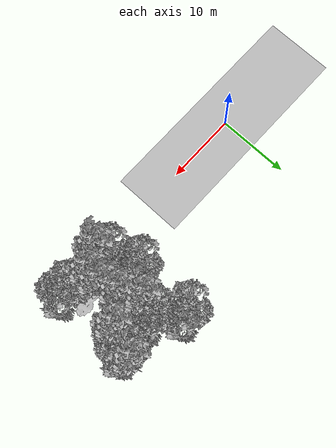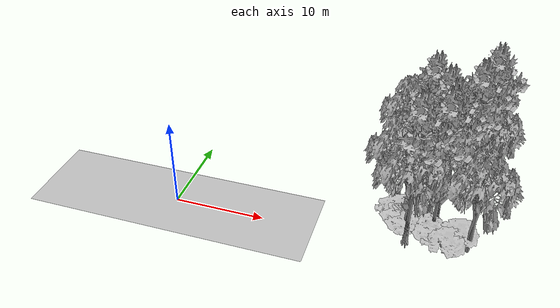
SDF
<sdf version="1.7">
 <world name="default">
  <model name="ground_plane">
   <static>1</static>
   <link name="link">
    <collision name="collision">
     <pose>-50 0 0 0 -0 0</pose>
     <geometry><plane><normal>0 0 1</normal><size>100 100</size></plane></geometry>
     <surface><contact><ode><min_depth>0.01</min_depth><max_vel>0</max_vel></ode></contact></surface>
    </collision>
    <visual name="grass">
     <cast_shadows>0</cast_shadows>
     <geometry>
      <mesh>
       <scale>0.5814285714285714 0.18142857142857144 0.1</scale>
       <uri>file://grass_plane/meshes/grass_plane.dae</uri>
      </mesh>
     </geometry>
    </visual>
   </link>
  </model>
  <model name="Tree 10">
   <static>1</static>
   <pose>23.41770234843692 13.937861952048472 0 1.57079 -0 0</pose>
   <link name="link">
    <collision name="collision">
     <geometry><mesh><scale>3.5 5 3.5</scale><uri>model://tree_2/meshes/tree_2.obj</uri></mesh></geometry>
    </collision>
    <visual name="visual">
     <geometry><mesh><scale>3.5 5 3.5</scale><uri>model://tree_2/meshes/tree_2.obj</uri></mesh></geometry>
    </visual>
   </link>
  </model>
  <model name="Tree 20">
   <static>1</static>
   <pose>23.373944926552966 5.9327887237196 0 1.57079 -0 0</pose>
   <link name="link">
    <collision name="collision">
     <geometry><mesh><scale>3.5 5 3.5</scale><uri>model://tree_2/meshes/tree_2.obj</uri></mesh></geometry>
    </collision>
    <visual name="visual">
     <geometry><mesh><scale>3.5 5 3.5</scale><uri>model://tree_2/meshes/tree_2.obj</uri></mesh></geometry>
    </visual>
   </link>
  </model>
  <model name="Tree 71">
   <static>1</static>
   <pose>30.439433179869198 10.244127430541909 0 1.57079 -0 0</pose>
   <link name="link">
    <collision name="collision">
     <geometry><mesh><scale>3.5 5 3.5</scale><uri>model://tree_2/meshes/tree_2.obj</uri></mesh></geometry>
    </collision>
    <visual name="visual">
     <geometry><mesh><scale>3.5 5 3.5</scale><uri>model://tree_2/meshes/tree_2.obj</uri></mesh></geometry>
    </visual>
   </link>
  </model>
  <model name="Tree 85">
   <static>1</static>
   <pose>24.84589100611022 2.0450765155303507 0 1.57079 -0 0</pose>
   <link name="link">
    <collision name="collision">
     <geometry><mesh><scale>3.5 5 3.5</scale><uri>model://tree_2/meshes/tree_2.obj</uri></mesh></geometry>
    </collision>
    <visual name="visual">
     <geometry><mesh><scale>3.5 5 3.5</scale><uri>model://tree_2/meshes/tree_2.obj</uri></mesh></geometry>
    </visual>
   </link>
  </model>
  <model name="Tree 175">
   <static>1</static>
   <pose>31.216532478574038 1.6920933646077962 0 1.57079 -0 0</pose>
   <link name="link">
    <collision name="collision">
     <geometry><mesh><scale>3.5 5 3.5</scale><uri>model://tree_2/meshes/tree_2.obj</uri></mesh></geometry>
    </collision>
    <visual name="visual">
     <geometry><mesh><scale>3.5 5 3.5</scale><uri>model://tree_2/meshes/tree_2.obj</uri></mesh></geometry>
    </visual>
   </link>
  </model>
  <model name="Tree 202">
   <static>1</static>
   <pose>27.799864416323373 4.47839186560271 0 1.57079 -0 0</pose>
   <link name="link">
    <collision name="collision">
     <geometry><mesh><scale>3.5 5 3.5</scale><uri>model://tree_9/meshes/tree_9.obj</uri></mesh></geometry>
    </collision>
    <visual name="visual">
     <geometry><mesh><scale>3.5 5 3.5</scale><uri>model://tree_9/meshes/tree_9.obj</uri></mesh></geometry>
    </visual>
   </link>
  </model>
  <model name="Tree 207">
   <static>1</static>
   <pose>31.313003176978825 13.101445186757516 0 1.57079 -0 0</pose>
   <link name="link">
    <collision name="collision">
     <geometry><mesh><scale>3.5 5 3.5</scale><uri>model://tree_9/meshes/tree_9.obj</uri></mesh></geometry>
    </collision>
    <visual name="visual">
     <geometry><mesh><scale>3.5 5 3.5</scale><uri>model://tree_9/meshes/tree_9.obj</uri></mesh></geometry>
    </visual>
   </link>
  </model>
  <model name="Tree 232">
   <static>1</static>
   <pose>26.428159945152885 8.563979378225575 0 1.57079 -0 0</pose>
   <link name="link">
    <collision name="collision">
     <geometry><mesh><scale>3 2 3</scale><uri>model://tree_3/meshes/tree_3.obj</uri></mesh></geometry>
    </collision>
    <visual name="visual">
     <geometry><mesh><scale>3 2 3</scale><uri>model://tree_3/meshes/tree_3.obj</uri></mesh></geometry>
    </visual>
   </link>
  </model>
  <model name="Tree 266">
   <static>1</static>
   <pose>31.379351463459713 11.527972246798324 0 1.57079 -0 0</pose>
   <link name="link">
    <collision name="collision">
     <geometry><mesh><scale>3.5 5 3.5</scale><uri>model://tree_2/meshes/tree_2.obj</uri></mesh></geometry>
    </collision>
    <visual name="visual">
     <geometry><mesh><scale>3.5 5 3.5</scale><uri>model://tree_2/meshes/tree_2.obj</uri></mesh></geometry>
    </visual>
   </link>
  </model>
  <model name="Tree 282">
   <static>1</static>
   <pose>27.50120636882457 10.28270531051064 0 1.57079 -0 0</pose>
   <link name="link">
    <collision name="collision">
     <geometry><mesh><scale>3.5 5 3.5</scale><uri>model://tree_2/meshes/tree_2.obj</uri></mesh></geometry>
    </collision>
    <visual name="visual">
     <geometry><mesh><scale>3.5 5 3.5</scale><uri>model://tree_2/meshes/tree_2.obj</uri></mesh></geometry>
    </visual>
   </link>
  </model>
  <model name="Tree 297">
   <static>1</static>
   <pose>23.567400009500446 4.210501802500691 0 1.57079 -0 0</pose>
   <link name="link">
    <collision name="collision">
     <geometry><mesh><scale>4 2.5 4</scale><uri>model://tree_1/meshes/tree_1.obj</uri></mesh></geometry>
    </collision>
    <visual name="visual">
     <geometry><mesh><scale>4 2.5 4</scale><uri>model://tree_1/meshes/tree_1.obj</uri></mesh></geometry>
    </visual>
   </link>
  </model>
  <model name="Tree 325">
   <static>1</static>
   <pose>26.594007709506684 11.131016480885954 0 1.57079 -0 0</pose>
   <link name="link">
    <collision name="collision">
     <geometry><mesh><scale>3.5 5 3.5</scale><uri>model://tree_2/meshes/tree_2.obj</uri></mesh></geometry>
    </collision>
    <visual name="visual">
     <geometry><mesh><scale>3.5 5 3.5</scale><uri>model://tree_2/meshes/tree_2.obj</uri></mesh></geometry>
    </visual>
   </link>
  </model>
  <model name="Tree 326">
   <static>1</static>
   <pose>25.512493040483434 6.024958450952617 0 1.57079 -0 0</pose>
   <link name="link">
    <collision name="collision">
     <geometry><mesh><scale>3.5 5 3.5</scale><uri>model://tree_2/meshes/tree_2.obj</uri></mesh></geometry>
    </collision>
    <visual name="visual">
     <geometry><mesh><scale>3.5 5 3.5</scale><uri>model://tree_2/meshes/tree_2.obj</uri></mesh></geometry>
    </visual>
   </link>
  </model>
  <model name="Tree 339">
   <static>1</static>
   <pose>24.268799278448782 3.2190858737933823 0 1.57079 -0 0</pose>
   <link name="link">
    <collision name="collision">
     <geometry><mesh><scale>4 2.5 4</scale><uri>model://tree_1/meshes/tree_1.obj</uri></mesh></geometry>
    </collision>
    <visual name="visual">
     <geometry><mesh><scale>4 2.5 4</scale><uri>model://tree_1/meshes/tree_1.obj</uri></mesh></geometry>
    </visual>
   </link>
  </model>
  <model name="Tree 380">
   <static>1</static>
   <pose>30.09386521503724 2.4820706642568133 0 1.57079 -0 0</pose>
   <link name="link">
    <collision name="collision">
     <geometry><mesh><scale>3 2 3</scale><uri>model://tree_3/meshes/tree_3.obj</uri></mesh></geometry>
    </collision>
    <visual name="visual">
     <geometry><mesh><scale>3 2 3</scale><uri>model://tree_3/meshes/tree_3.obj</uri></mesh></geometry>
    </visual>
   </link>
  </model>
  <model name="Tree 466">
   <static>1</static>
   <pose>25.08955577552375 1.4267232601338122 0 1.57079 -0 0</pose>
   <link name="link">
    <collision name="collision">
     <geometry><mesh><scale>3.5 5 3.5</scale><uri>model://tree_9/meshes/tree_9.obj</uri></mesh></geometry>
    </collision>
    <visual name="visual">
     <geometry><mesh><scale>3.5 5 3.5</scale><uri>model://tree_9/meshes/tree_9.obj</uri></mesh></geometry>
    </visual>
   </link>
  </model>
  <model name="Tree 469">
   <static>1</static>
   <pose>27.56433692449852 2.822469353822889 0 1.57079 -0 0</pose>
   <link name="link">
    <collision name="collision">
     <geometry><mesh><scale>3.5 5 3.5</scale><uri>model://tree_9/meshes/tree_9.obj</uri></mesh></geometry>
    </collision>
    <visual name="visual">
     <geometry><mesh><scale>3.5 5 3.5</scale><uri>model://tree_9/meshes/tree_9.obj</uri></mesh></geometry>
    </visual>
   </link>
  </model>
  <model name="Tree 473">
   <static>1</static>
   <pose>27.017085350282542 6.88058682850378 0 1.57079 -0 0</pose>
   <link name="link">
    <collision name="collision">
     <geometry><mesh><scale>3.5 5 3.5</scale><uri>model://tree_9/meshes/tree_9.obj</uri></mesh></geometry>
    </collision>
    <visual name="visual">
     <geometry><mesh><scale>3.5 5 3.5</scale><uri>model://tree_9/meshes/tree_9.obj</uri></mesh></geometry>
    </visual>
   </link>
  </model>
  <model name="Tree 494">
   <static>1</static>
   <pose>23.68055493306808 4.503237942209207 0 1.57079 -0 0</pose>
   <link name="link">
    <collision name="collision">
     <geometry><mesh><scale>3 2 3</scale><uri>model://tree_3/meshes/tree_3.obj</uri></mesh></geometry>
    </collision>
    <visual name="visual">
     <geometry><mesh><scale>3 2 3</scale><uri>model://tree_3/meshes/tree_3.obj</uri></mesh></geometry>
    </visual>
   </link>
  </model>
  <model name="Tree 495">
   <static>1</static>
   <pose>29.007236386613116 0.8578364985640015 0 1.57079 -0 0</pose>
   <link name="link">
    <collision name="collision">
     <geometry><mesh><scale>3 2 3</scale><uri>model://tree_3/meshes/tree_3.obj</uri></mesh></geometry>
    </collision>
    <visual name="visual">
     <geometry><mesh><scale>3 2 3</scale><uri>model://tree_3/meshes/tree_3.obj</uri></mesh></geometry>
    </visual>
   </link>
  </model>
  <model name="Tree 513">
   <static>1</static>
   <pose>27.055634943853164 2.6164836650243792 0 1.57079 -0 0</pose>
   <link name="link">
    <collision name="collision">
     <geometry><mesh><scale>4 2.5 4</scale><uri>model://tree_1/meshes/tree_1.obj</uri></mesh></geometry>
    </collision>
    <visual name="visual">
     <geometry><mesh><scale>4 2.5 4</scale><uri>model://tree_1/meshes/tree_1.obj</uri></mesh></geometry>
    </visual>
   </link>
  </model>
  <model name="Tree 524">
   <static>1</static>
   <pose>29.974455938384793 9.106209725364216 0 1.57079 -0 0</pose>
   <link name="link">
    <collision name="collision">
     <geometry><mesh><scale>3.5 5 3.5</scale><uri>model://tree_9/meshes/tree_9.obj</uri></mesh></geometry>
    </collision>
    <visual name="visual">
     <geometry><mesh><scale>3.5 5 3.5</scale><uri>model://tree_9/meshes/tree_9.obj</uri></mesh></geometry>
    </visual>
   </link>
  </model>
  <model name="Tree 535">
   <static>1</static>
   <pose>25.468048394677695 9.36257716772398 0 1.57079 -0 0</pose>
   <link name="link">
    <collision name="collision">
     <geometry><mesh><scale>3.5 5 3.5</scale><uri>model://tree_9/meshes/tree_9.obj</uri></mesh></geometry>
    </collision>
    <visual name="visual">
     <geometry><mesh><scale>3.5 5 3.5</scale><uri>model://tree_9/meshes/tree_9.obj</uri></mesh></geometry>
    </visual>
   </link>
  </model>
 </world>
</sdf>
